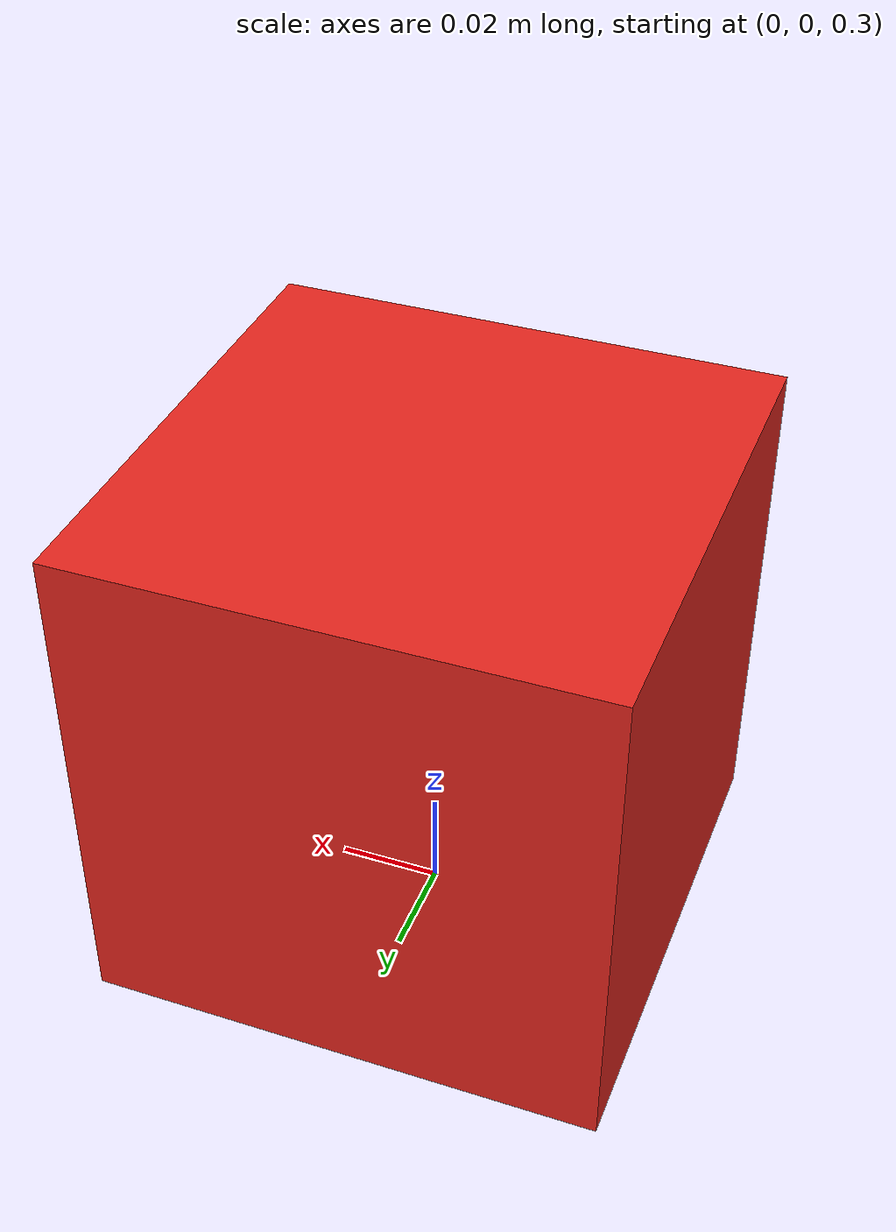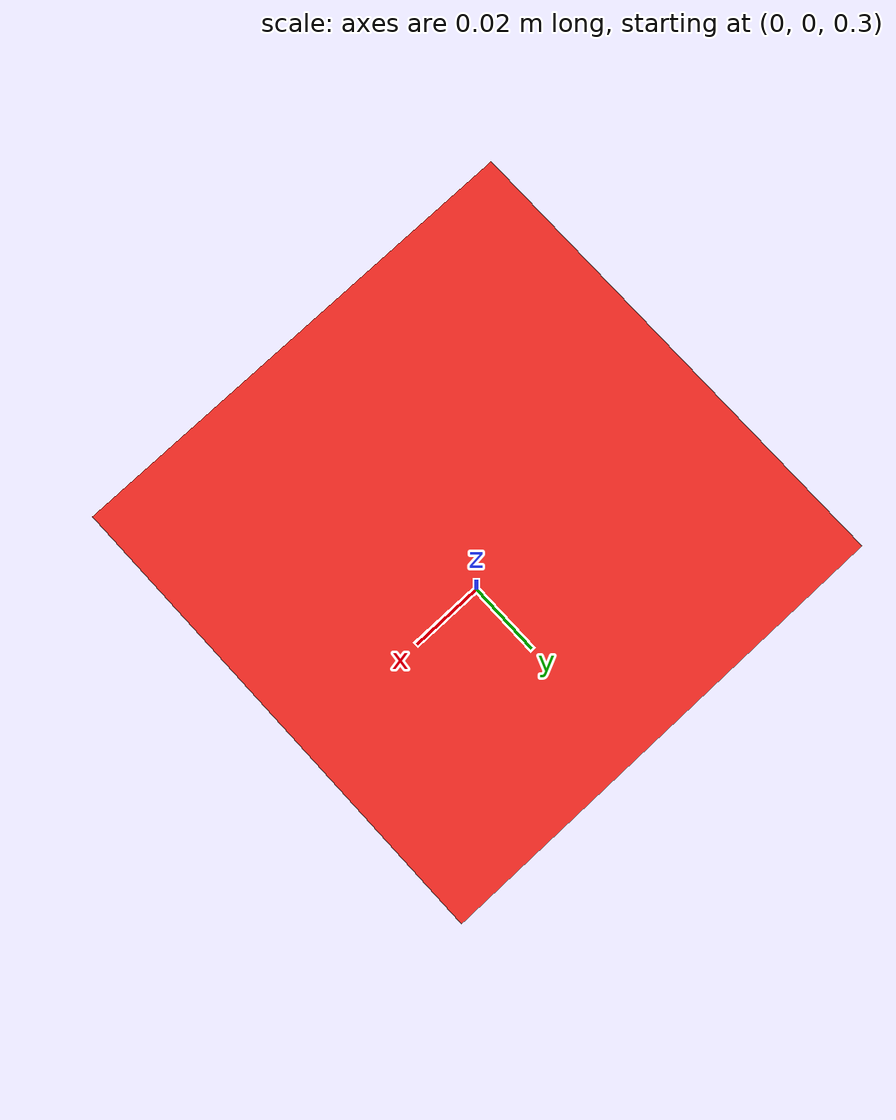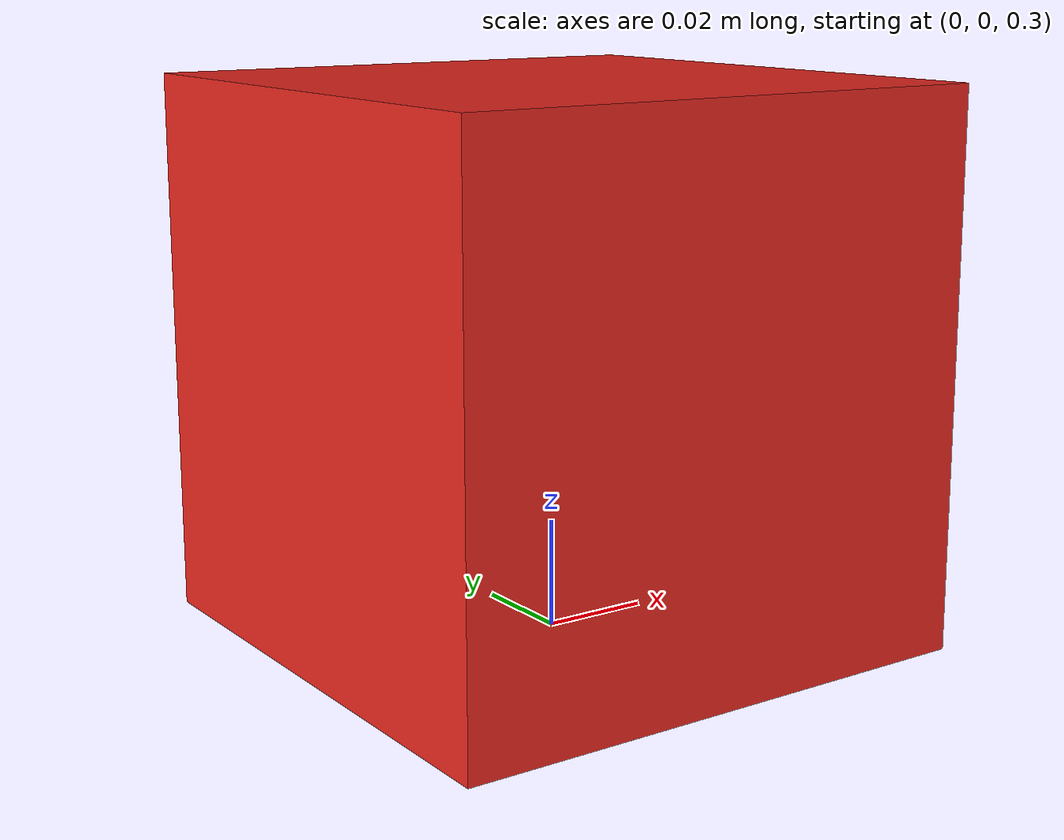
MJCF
<mujoco model="crosssim_rigid_drop">
  <compiler angle="radian" coordinate="local"/>
  <option gravity="0.0 0.0 -9.81" timestep="0.01"/>
  <visual><headlight ambient="0.45 0.45 0.45" diffuse="0.8 0.8 0.8" specular="0.15 0.15 0.15"/></visual>
  <asset>
  </asset>
  <custom>
    <text name="agenticsim_task_contract" data="{&quot;action&quot;:{&quot;interface&quot;:&quot;zero_action&quot;,&quot;operations&quot;:[]},&quot;observation&quot;:{&quot;state&quot;:[&quot;object_pose&quot;,&quot;contact&quot;]},&quot;reset&quot;:{&quot;object_poses&quot;:&quot;from_env_spec&quot;},&quot;success&quot;:[{&quot;type&quot;:&quot;settled&quot;}],&quot;termination&quot;:[{&quot;steps&quot;:120,&quot;type&quot;:&quot;timeout&quot;}]}"/>
    <text name="agenticsim_object_ids" data="[&quot;rigid_box&quot;]"/>
    <text name="agenticsim_sensors" data="[]"/>
  </custom>
  <contact>
  </contact>
  <worldbody>
    <geom name="ground" type="plane" size="3 3 0.1" rgba="0.3 0.3 0.3 1"/>
    <light name="key_light" pos="0 -1 2" dir="0 0 -1" diffuse="0.8 0.8 0.8"/>
    <body name="rigid_box" pos="0 0 0.35" quat="1 0 0 0"><freejoint name="rigid_box_free"/><geom name="rigid_box_geom" type="box" size="0.05 0.05 0.05" rgba="0.9 0.15 0.12 1"/></body>
  </worldbody>
</mujoco>
